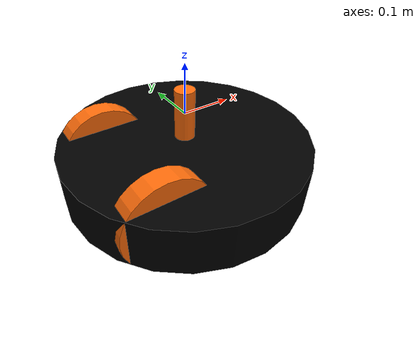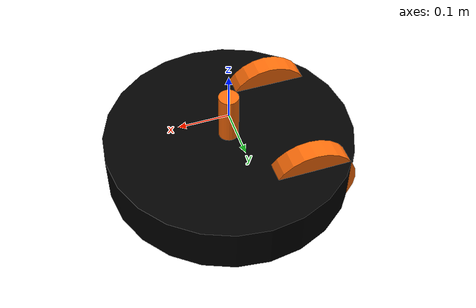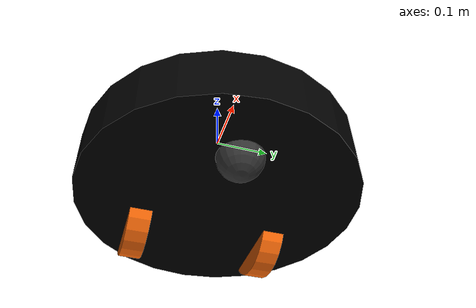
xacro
<?xml version="1.0" ?>

<robot name="logger" xmlns:xacro="https://www.ros.org/wiki/xacro" >

  <!-- Constants for robot dimensions -->
  <xacro:property name="PI" value="3.1415926535897931"/>
  <!-- properties of link_hat -->
  <xacro:property name="R_HAT" value="0.02"/>
  <xacro:property name="L_HAT" value="0.1"/>
  <xacro:property name="M_HAT" value="0.5"/>
  <!-- properties of link_chassis -->
  <xacro:property name="R_CHASSIS" value="0.25"/>
  <xacro:property name="L_CHASSIS" value="0.1"/>
  <xacro:property name="M_CHASSIS" value="2"/>
  <!-- properties of link_caster -->
  <xacro:property name="R_CASTER" value="0.04"/>
  <xacro:property name="M_CASTER" value="0.1"/>
  <!-- properties of link_wheel -->
  <xacro:property name="R_WHEEL" value="0.09"/>
  <xacro:property name="L_WHEEL" value="0.04"/>
  <xacro:property name="M_WHEEL" value="0.5"/>

  <!-- Import all Gazebo-customization elements, including Gazebo colors -->
  <xacro:include filename="$(find loggers_description)/urdf/single_logger.gazebo" />
  <!-- Import Rviz colors -->
  <xacro:include filename="$(find loggers_description)/urdf/materials.xacro" />

  <!-- Used for fixing robot to Gazebo 'base_link' -->
  <link name="world"/>

  <joint name="joint_world_hat" type="floating">
    <parent link="world"/>
    <child link="link_hat"/>
  </joint>

  <link name="link_hat">
    <visual>
      <origin rpy="0 0 0" xyz="0 0 0"/>
      <geometry>
        <cylinder length="${L_HAT}" radius="${R_HAT}"/>
      </geometry>
      <material name="orange"/>
    </visual>
    <collision>
      <origin rpy="0 0 0" xyz="0 0 0"/>
      <geometry>
        <cylinder length="${L_HAT}" radius="${R_HAT}"/>
      </geometry>
    </collision>
    <inertial>
      <mass value="${M_HAT}"/>
      <origin rpy="0 0 0" xyz="0 0 0"/>
      <inertia ixx="${1/12*M_HAT*(3*R_HAT*R_HAT+L_HAT*L_HAT)}" ixy="0" ixz="0" iyy="${1/12*M_HAT*(3*R_HAT*R_HAT+L_HAT*L_HAT)}" iyz="0" izz="${1/2*M_HAT*R_HAT*R_HAT}"/>
    </inertial>
  </link>

  <joint name="joint_hat_chassis" type="continuous">
    <origin rpy="0 0 ${PI/2}" xyz="0.0 0 ${(-L_HAT-L_CHASSIS)/2}"/>
    <parent link="link_hat"/>
    <child link="link_chassis" />
    <axis rpy="0 0 0" xyz="0 0 1"/>
  </joint>

  <link name="link_chassis">
    <visual>
      <origin rpy="0 0 0" xyz="0 0 0"/>
      <geometry>
        <cylinder length="${L_CHASSIS}" radius="${R_CHASSIS}"/>
      </geometry>
      <material name="black"/>
    </visual>
    <collision>
      <origin rpy="0 0 0" xyz="0 0 0"/>
      <geometry>
        <cylinder length="${L_CHASSIS}" radius="${R_CHASSIS}"/>
      </geometry>
    </collision>
    <inertial>
      <mass value="2"/>
      <origin rpy="0 0 0" xyz="0 0 0"/>
      <inertia ixx="${1/12*M_CHASSIS*(3*R_CHASSIS*R_CHASSIS+L_CHASSIS*L_CHASSIS)}" ixy="0" ixz="0" iyy="${1/12*M_CHASSIS*(3*R_CHASSIS*R_CHASSIS+L_CHASSIS*L_CHASSIS)}" iyz="0" izz="${1/2*M_CHASSIS*R_CHASSIS*R_CHASSIS}"/>
    </inertial>
  </link>

  <joint name="joint_chassis_caster" type="fixed">
    <origin rpy="0 0 0" xyz="0 ${-R_CHASSIS/2} ${-L_CHASSIS/2}"/>
    <parent link="link_chassis"/>
    <child link="link_caster"/>
  </joint>

  <link name="link_caster">
    <visual>
      <origin rpy="0 0 0" xyz="0 0 0"/>
      <geometry>
        <sphere radius="${R_CASTER}"/>
      </geometry>
      <material name="grey"/>
    </visual>
    <collision>
      <origin rpy=" 0 0 0" xyz="0 0 0"/>
      <geometry>
        <sphere radius="${R_CASTER}"/>
      </geometry>
    </collision>
    <inertial>
      <mass value="${M_CASTER}"/>
      <origin rpy="0 0 0" xyz="0 0 0"/>
      <inertia ixx="${2/5*M_CASTER*R_CASTER*R_CASTER}" ixy="0" ixz="0" iyy="${2/5*M_CASTER*R_CASTER*R_CASTER}" iyz="0" izz="${2/5*M_CASTER*R_CASTER*R_CASTER}"/>
    </inertial>
  </link>

  <joint name="joint_chassis_lwheel" type="continuous">
    <origin rpy="0 0 0" xyz="${R_CHASSIS/2} ${R_CHASSIS/2} 0"/>
    <parent link="link_chassis"/>
    <child link="link_left_wheel" />
    <axis rpy="0 0 0" xyz="1 0 0"/>
  </joint>

  <link name="link_left_wheel">
    <visual>
      <origin rpy="0 ${PI/2} 0" xyz="0 0 0"/>
      <geometry>
        <cylinder length="${L_WHEEL}" radius="${R_WHEEL}"/>
      </geometry>
      <material name="orange"/>
    </visual>
    <collision>
      <origin rpy="0 ${PI/2} 0" xyz="0 0 0" />
      <geometry>
        <cylinder length="${L_WHEEL}" radius="${R_WHEEL}"/>
      </geometry>
    </collision>
    <inertial>
      <mass value="${M_WHEEL}"/>
      <origin rpy="0 ${PI/2} 0" xyz="0 0 0"/>
      <inertia ixx="${1/12*M_WHEEL*(3*R_WHEEL*R_WHEEL+L_WHEEL*L_WHEEL)}" ixy="0" ixz="0" iyy="${1/12*M_WHEEL*(3*R_WHEEL*R_WHEEL+L_WHEEL*L_WHEEL)}" iyz="0" izz="${1/2*M_WHEEL*R_WHEEL*R_WHEEL}"/>
    </inertial>
  </link>

  <joint name="joint_chassis_rwheel" type="continuous">
    <origin rpy="0 0 0" xyz="${-R_CHASSIS/2} ${R_CHASSIS/2} 0"/>
    <child link="link_right_wheel" />
    <parent link="link_chassis"/>
    <axis rpy="0 0 0" xyz="1 0 0"/>
  </joint>

  <link name="link_right_wheel">
    <collision>
      <origin rpy="0 ${PI/2} 0" xyz="0 0 0" />
      <geometry>
        <cylinder length="${L_WHEEL}" radius="${R_WHEEL}"/>
      </geometry>
    </collision>
    <visual>
      <origin rpy="0 ${PI/2} 0" xyz="0 0 0"/>
      <geometry>
        <cylinder length="${L_WHEEL}" radius="${R_WHEEL}"/>
      </geometry>
      <material name="orange"/>
    </visual>
    <inertial>
      <mass value="${M_WHEEL}"/>
      <origin rpy="0 ${PI/2} 0" xyz="0 0 0"/>
      <inertia ixx="${1/12*M_WHEEL*(3*R_WHEEL*R_WHEEL+L_WHEEL*L_WHEEL)}" ixy="0" ixz="0" iyy="${1/12*M_WHEEL*(3*R_WHEEL*R_WHEEL+L_WHEEL*L_WHEEL)}" iyz="0" izz="${1/2*M_WHEEL*R_WHEEL*R_WHEEL}"/>
    </inertial>
  </link>

</robot>

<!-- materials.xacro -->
<robot>

  <material name="black">
    <color rgba="0.0 0.0 0.0 1.0"/>
  </material>

  <material name="blue">
    <color rgba="0.0 0.0 0.8 1.0"/>
  </material>

  <material name="green">
    <color rgba="0.0 0.8 0.0 1.0"/>
  </material>

  <material name="grey">
    <color rgba="0.2 0.2 0.2 1.0"/>
  </material>

  <material name="orange">
    <color rgba="${255/255} ${108/255} ${10/255} 1.0"/>
  </material>

  <material name="brown">
    <color rgba="${222/255} ${207/255} ${195/255} 1.0"/>
  </material>

  <material name="red">
    <color rgba="0.8 0.0 0.0 1.0"/>
  </material>

  <material name="white">
    <color rgba="1.0 1.0 1.0 1.0"/>
  </material>

  <material name="uc_red">
    <color rgba="${224/255} ${1/255} ${34/255} 1.0"/>
  </material>

</robot>
